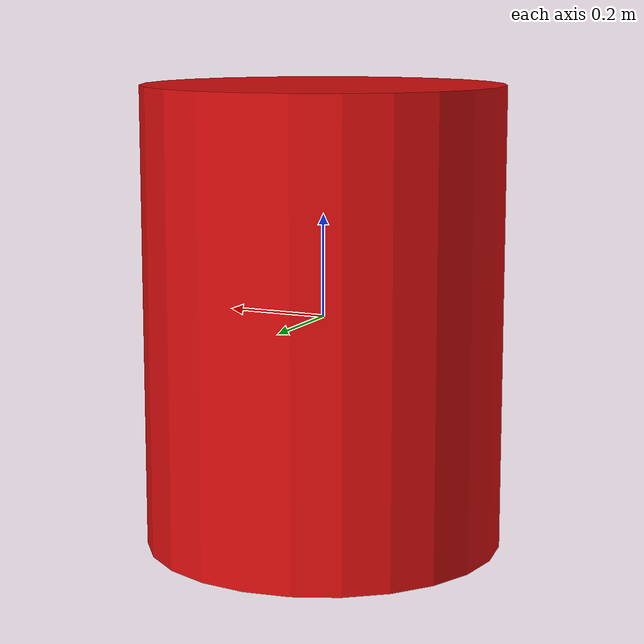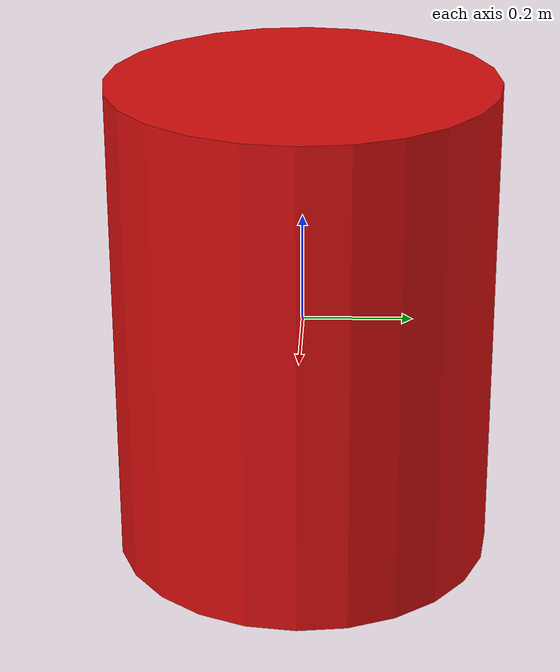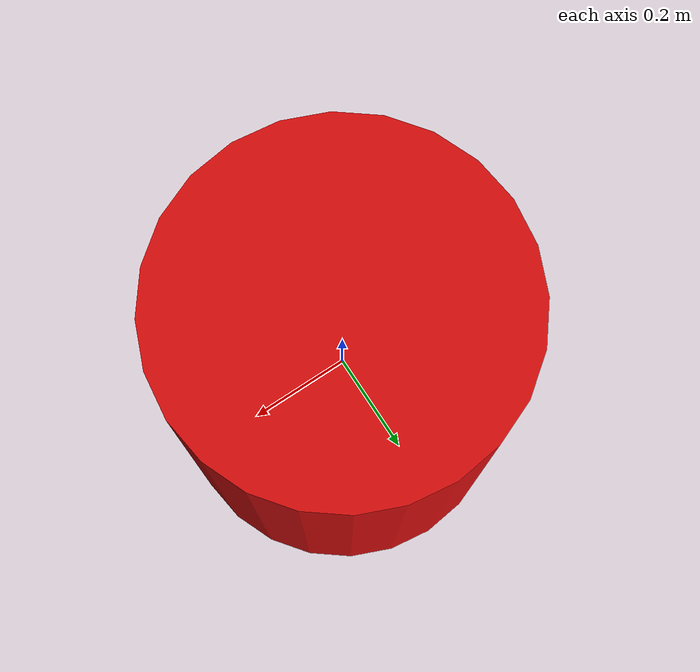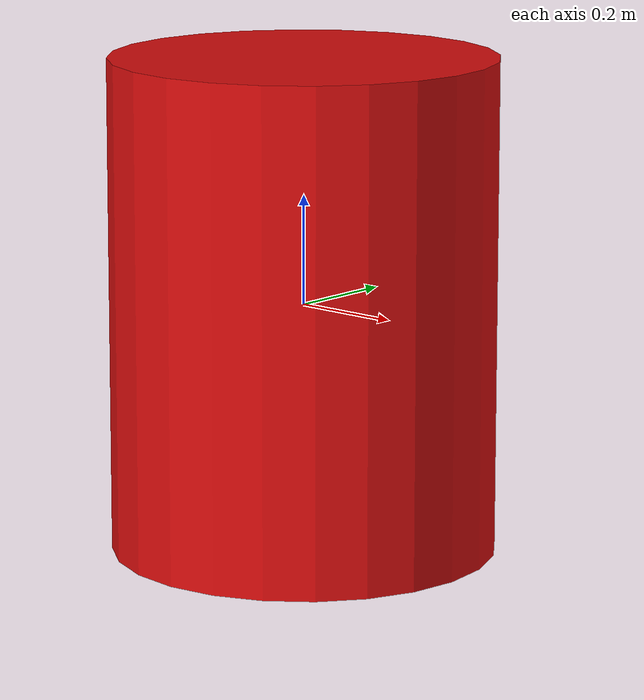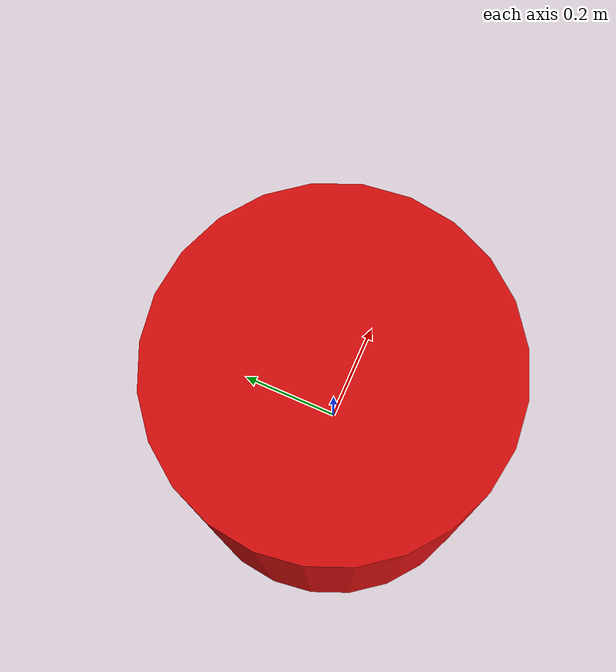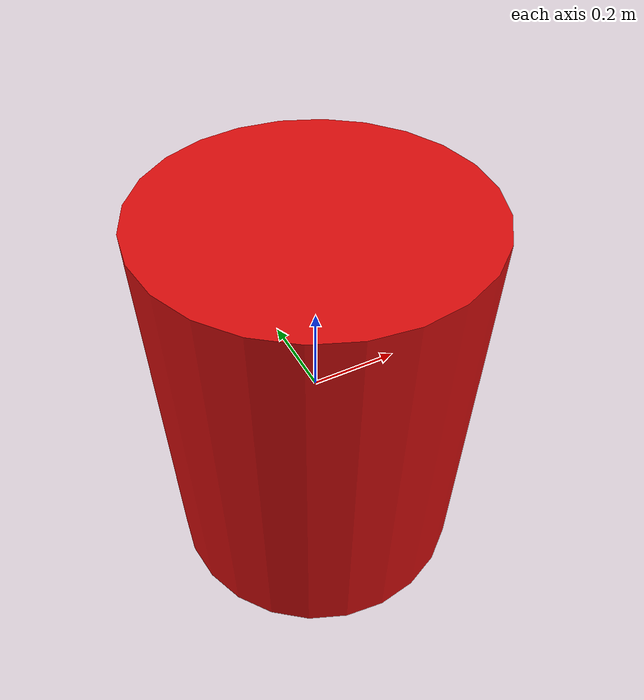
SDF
<?xml version="1.0" ?>
<sdf version="1.9">
  <model name="buoy_cone_red">
    <link name="link">
      <inertial>
        <pose>0 0 -0.3 0 0 0</pose>
        <mass>50.0</mass>
        <inertia>
          <ixx>10.0</ixx>
          <iyy>10.0</iyy>
          <izz>5.0</izz>
        </inertia>
      </inertial>

      <collision name="collision">
        <geometry>
          <cylinder>
            <radius>0.35</radius>
            <length>0.9</length>
          </cylinder>
        </geometry>
      </collision>

      <visual name="visual">
        <geometry>
          <cylinder>
            <radius>0.35</radius>
            <length>0.9</length>
          </cylinder>
        </geometry>
        <material>
          <ambient>0.85 0.05 0.05 1.0</ambient>
          <diffuse>0.85 0.05 0.05 1.0</diffuse>
          <specular>0.4 0.4 0.4 1.0</specular>
        </material>
      </visual>
    </link>

    <plugin name="vrx::PolyhedraBuoyancyDrag" filename="libPolyhedraBuoyancyDrag.so">
      <fluid_density>1000</fluid_density>
      <fluid_level>0.0</fluid_level>
      <linear_drag>15.0</linear_drag>
      <angular_drag>1.0</angular_drag>
      <buoyancy name="collision_outer">
        <link_name>link</link_name>
        <pose>0 0 -0.45 0 0 0</pose>
        <geometry>
          <cylinder>
            <radius>0.35</radius>
            <length>0.9</length>
          </cylinder>
        </geometry>
      </buoyancy>
      <wavefield>
        <topic>/vrx/wavefield/parameters</topic>
      </wavefield>
    </plugin>
  </model>
</sdf>
